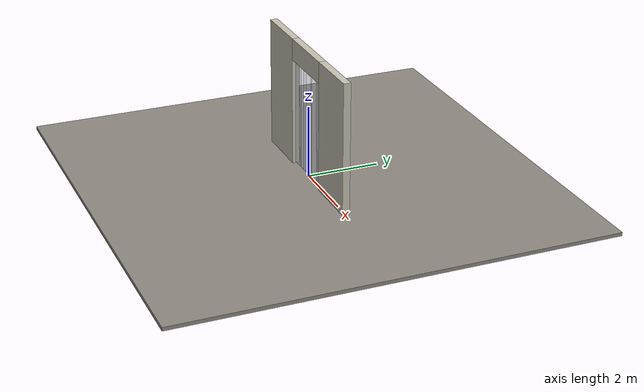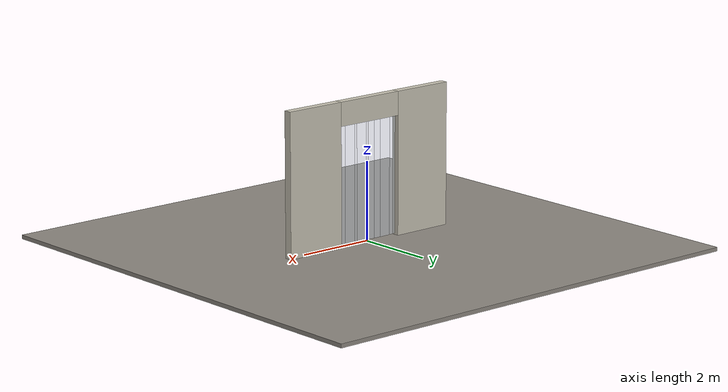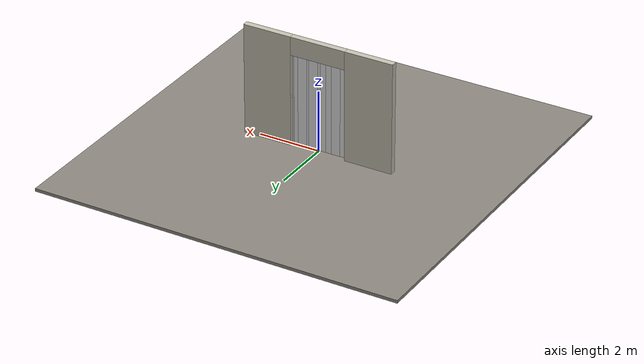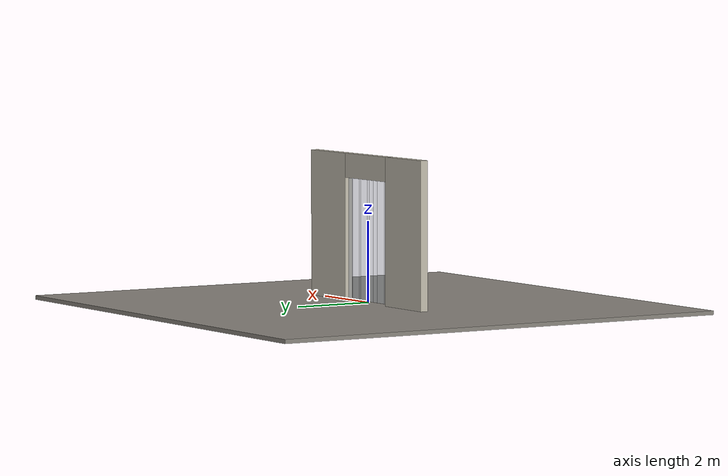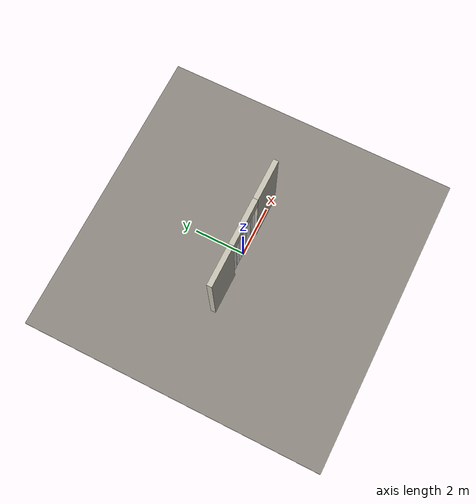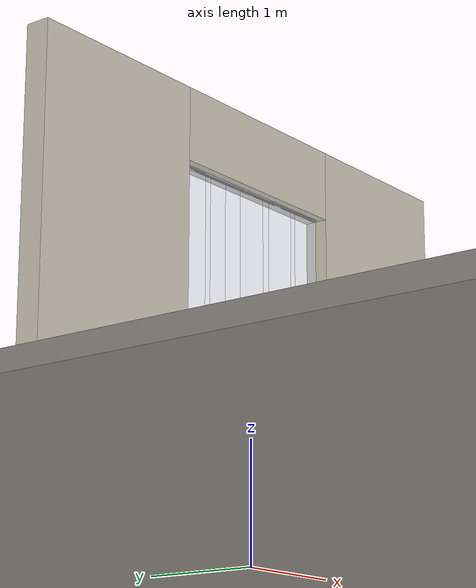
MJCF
<?xml version="1.0" ?>
<mujoco model="db0535_strip_curtain_simple">
  <compiler angle="radian" meshdir="../../hardware" texturedir="../../textures" autolimits="true" inertiafromgeom="false"/>
  <option timestep="0.002" integrator="implicitfast" cone="elliptic" impratio="10" noslip_iterations="3">
    <flag multiccd="enable"/>
  </option>
  <size memory="16M"/>
  <default>
    <geom condim="4" solref="0.005 1" solimp="0.95 0.99 0.001"/>
    <joint solreflimit="0.005 1" solimplimit="0.95 0.99 0.001"/>
    <tendon solreflimit="0.005 1"/>
    <equality solref="0.002 1"/>
  </default>
  <visual>
    <headlight ambient="0.4 0.4 0.4" diffuse="0.7 0.7 0.7" specular="0.2 0.2 0.2"/>
    <quality shadowsize="4096"/>
    <map znear="0.01" zfar="60"/>
  </visual>
  <asset>
    <material name="mat_floor" rgba="0.55 0.53 0.5 1" specular="0.2" shininess="0.15" reflectance="0"/>
    <material name="mat_wall" rgba="0.78 0.76 0.7 1" specular="0.2" shininess="0.1" reflectance="0"/>
    <material name="mat_frame" rgba="0.75 0.76 0.77 1" specular="0.8" shininess="0.65" reflectance="0.4"/>
    <material name="mat_strip" rgba="0.85 0.9 0.95 0.45" specular="0.2" shininess="0.7" reflectance="0.1"/>
    <texture name="skybox" type="skybox" builtin="gradient" rgb1="0.6 0.7 0.85" rgb2="0.9 0.92 0.95" width="256" height="256"/>
  </asset>
  <worldbody>
    <light name="sun" pos="1.5 -2.5 4" dir="-0.3 0.5 -0.8" directional="true" diffuse="0.8 0.8 0.8" specular="0.3 0.3 0.3" castshadow="true"/>
    <light name="fill" pos="-1.5 2.5 3" dir="0.3 -0.5 -0.7" directional="true" diffuse="0.35 0.35 0.4" castshadow="false"/>
    <camera name="robot_view" pos="0 -3.45625 2.47775" xyaxes="1 0 0 0 0.26963 0.962964" fovy="52"/>
    <camera name="far_view" pos="0 3.45625 2.47775" xyaxes="-1 0 0 0 -0.26963 0.962964" fovy="52"/>
    <camera name="iso" pos="2.62675 -2.90325 3.03075" xyaxes="0.741536 0.670913 0 -0.242917 0.268487 0.932151" fovy="46"/>
    <camera name="detail_handle" pos="0.48 -0.8 1.28" xyaxes="0.97561 0.219512 0 -0.070934 0.315262 0.94635" fovy="38"/>
    <geom name="floor" type="box" size="6 6 0.05" pos="0 0 -0.05" material="mat_floor" group="0" contype="1" conaffinity="1" friction="0.8 0.005 0.0001" density="2400"/>
    <geom name="wall_left" type="box" size="0.795 0.1 1.81" pos="-1.705 0 1.81" material="mat_wall" group="0" contype="1" conaffinity="1" friction="0.6 0.005 0.0001" density="800"/>
    <geom name="wall_right" type="box" size="0.795 0.1 1.81" pos="1.705 0 1.81" material="mat_wall" group="0" contype="1" conaffinity="1" friction="0.6 0.005 0.0001" density="800"/>
    <geom name="wall_header" type="box" size="0.91 0.1 0.3" pos="0 0 3.32" material="mat_wall" group="0" contype="1" conaffinity="1" friction="0.6 0.005 0.0001" density="800"/>
    <geom name="hanger_rail" type="box" size="0.96 0.03 0.03" pos="0 0 3.05" material="mat_frame" group="0" contype="1" conaffinity="1" friction="0.6 0.005 0.0001" density="7900"/>
    <geom name="strip_0_hanger" type="box" size="0.15 0.0055 0.0145" pos="-0.75 -0.0085 3.0275" material="mat_frame" group="1" contype="0" conaffinity="0" density="7900"/>
    <geom name="strip_1_hanger" type="box" size="0.15 0.0055 0.0145" pos="-0.5625 0.0035 3.0275" material="mat_frame" group="1" contype="0" conaffinity="0" density="7900"/>
    <geom name="strip_2_hanger" type="box" size="0.15 0.0055 0.0145" pos="-0.375 0.0015 3.0275" material="mat_frame" group="1" contype="0" conaffinity="0" density="7900"/>
    <geom name="strip_3_hanger" type="box" size="0.15 0.0055 0.0145" pos="-0.1875 -0.0015 3.0275" material="mat_frame" group="1" contype="0" conaffinity="0" density="7900"/>
    <geom name="strip_4_hanger" type="box" size="0.15 0.0055 0.0145" pos="0 -0.0035 3.0275" material="mat_frame" group="1" contype="0" conaffinity="0" density="7900"/>
    <geom name="strip_5_hanger" type="box" size="0.15 0.0055 0.0145" pos="0.1875 0.0085 3.0275" material="mat_frame" group="1" contype="0" conaffinity="0" density="7900"/>
    <geom name="strip_6_hanger" type="box" size="0.15 0.0055 0.0145" pos="0.375 -0.0085 3.0275" material="mat_frame" group="1" contype="0" conaffinity="0" density="7900"/>
    <geom name="strip_7_hanger" type="box" size="0.15 0.0055 0.0145" pos="0.5625 0.0035 3.0275" material="mat_frame" group="1" contype="0" conaffinity="0" density="7900"/>
    <geom name="strip_8_hanger" type="box" size="0.15 0.0055 0.0145" pos="0.75 0.0015 3.0275" material="mat_frame" group="1" contype="0" conaffinity="0" density="7900"/>
    <site name="approach_point" pos="0 -1.5 0" quat="1 0 0 0" size="0.05" rgba="0.2 0.9 0.2 0.5" group="4"/>
    <site name="goal_point" pos="0 1.5 0" quat="1 0 0 0" size="0.05" rgba="0.2 0.9 0.2 0.5" group="4"/>
    <site name="door_plane_center" pos="0 0 1.51" quat="1 0 0 0" size="0.02" rgba="0.2 0.9 0.2 0.5" group="4"/>
    <body name="strip_0" pos="-0.75 -0.0085 3.014">
      <inertial pos="0 0 -1.49" mass="2.357222" quat="-0.5 0.5 0.5 0.5" diaginertia="0.017680935 1.744424786 1.762102185"/>
      <joint name="strip_0_hinge" type="hinge" axis="1 0 0" limited="true" range="-1.48353 1.48353" damping="0.05" frictionloss="0.02" armature="0.005"/>
      <geom name="strip_0_geom" type="box" size="0.15 0.0015 1.49" pos="0 0 -1.49" material="mat_strip" group="0" contype="1" conaffinity="1" friction="0.6 0.005 0.0001" density="1250"/>
    </body>
    <body name="strip_1" pos="-0.5625 0.0035 3.014">
      <inertial pos="0 0 -1.49" mass="2.357222" quat="-0.5 0.5 0.5 0.5" diaginertia="0.017680935 1.744424786 1.762102185"/>
      <joint name="strip_1_hinge" type="hinge" axis="1 0 0" limited="true" range="-1.48353 1.48353" damping="0.05" frictionloss="0.02" armature="0.005"/>
      <geom name="strip_1_geom" type="box" size="0.15 0.0015 1.49" pos="0 0 -1.49" material="mat_strip" group="0" contype="1" conaffinity="1" friction="0.6 0.005 0.0001" density="1250"/>
    </body>
    <body name="strip_2" pos="-0.375 0.0015 3.014">
      <inertial pos="0 0 -1.49" mass="2.357222" quat="-0.5 0.5 0.5 0.5" diaginertia="0.017680935 1.744424786 1.762102185"/>
      <joint name="strip_2_hinge" type="hinge" axis="1 0 0" limited="true" range="-1.48353 1.48353" damping="0.05" frictionloss="0.02" armature="0.005"/>
      <geom name="strip_2_geom" type="box" size="0.15 0.0015 1.49" pos="0 0 -1.49" material="mat_strip" group="0" contype="1" conaffinity="1" friction="0.6 0.005 0.0001" density="1250"/>
    </body>
    <body name="strip_3" pos="-0.1875 -0.0015 3.014">
      <inertial pos="0 0 -1.49" mass="2.357222" quat="-0.5 0.5 0.5 0.5" diaginertia="0.017680935 1.744424786 1.762102185"/>
      <joint name="strip_3_hinge" type="hinge" axis="1 0 0" limited="true" range="-1.48353 1.48353" damping="0.05" frictionloss="0.02" armature="0.005"/>
      <geom name="strip_3_geom" type="box" size="0.15 0.0015 1.49" pos="0 0 -1.49" material="mat_strip" group="0" contype="1" conaffinity="1" friction="0.6 0.005 0.0001" density="1250"/>
    </body>
    <body name="strip_4" pos="0 -0.0035 3.014">
      <inertial pos="0 0 -1.49" mass="2.357222" quat="-0.5 0.5 0.5 0.5" diaginertia="0.017680935 1.744424786 1.762102185"/>
      <joint name="strip_4_hinge" type="hinge" axis="1 0 0" limited="true" range="-1.48353 1.48353" damping="0.05" frictionloss="0.02" armature="0.02"/>
      <geom name="strip_4_geom" type="box" size="0.15 0.0015 1.49" pos="0 0 -1.49" material="mat_strip" group="0" contype="1" conaffinity="1" friction="0.6 0.005 0.0001" density="1250"/>
    </body>
    <body name="strip_5" pos="0.1875 0.0085 3.014">
      <inertial pos="0 0 -1.49" mass="2.357222" quat="-0.5 0.5 0.5 0.5" diaginertia="0.017680935 1.744424786 1.762102185"/>
      <joint name="strip_5_hinge" type="hinge" axis="1 0 0" limited="true" range="-1.48353 1.48353" damping="0.05" frictionloss="0.02" armature="0.005"/>
      <geom name="strip_5_geom" type="box" size="0.15 0.0015 1.49" pos="0 0 -1.49" material="mat_strip" group="0" contype="1" conaffinity="1" friction="0.6 0.005 0.0001" density="1250"/>
    </body>
    <body name="strip_6" pos="0.375 -0.0085 3.014">
      <inertial pos="0 0 -1.49" mass="2.357222" quat="-0.5 0.5 0.5 0.5" diaginertia="0.017680935 1.744424786 1.762102185"/>
      <joint name="strip_6_hinge" type="hinge" axis="1 0 0" limited="true" range="-1.48353 1.48353" damping="0.05" frictionloss="0.02" armature="0.005"/>
      <geom name="strip_6_geom" type="box" size="0.15 0.0015 1.49" pos="0 0 -1.49" material="mat_strip" group="0" contype="1" conaffinity="1" friction="0.6 0.005 0.0001" density="1250"/>
    </body>
    <body name="strip_7" pos="0.5625 0.0035 3.014">
      <inertial pos="0 0 -1.49" mass="2.357222" quat="-0.5 0.5 0.5 0.5" diaginertia="0.017680935 1.744424786 1.762102185"/>
      <joint name="strip_7_hinge" type="hinge" axis="1 0 0" limited="true" range="-1.48353 1.48353" damping="0.05" frictionloss="0.02" armature="0.005"/>
      <geom name="strip_7_geom" type="box" size="0.15 0.0015 1.49" pos="0 0 -1.49" material="mat_strip" group="0" contype="1" conaffinity="1" friction="0.6 0.005 0.0001" density="1250"/>
    </body>
    <body name="strip_8" pos="0.75 0.0015 3.014">
      <inertial pos="0 0 -1.49" mass="2.357222" quat="-0.5 0.5 0.5 0.5" diaginertia="0.017680935 1.744424786 1.762102185"/>
      <joint name="strip_8_hinge" type="hinge" axis="1 0 0" limited="true" range="-1.48353 1.48353" damping="0.05" frictionloss="0.02" armature="0.005"/>
      <geom name="strip_8_geom" type="box" size="0.15 0.0015 1.49" pos="0 0 -1.49" material="mat_strip" group="0" contype="1" conaffinity="1" friction="0.6 0.005 0.0001" density="1250"/>
    </body>
  </worldbody>
  <contact>
    <exclude body1="strip_1" body2="strip_0"/>
    <exclude body1="strip_2" body2="strip_1"/>
    <exclude body1="strip_3" body2="strip_2"/>
    <exclude body1="strip_4" body2="strip_3"/>
    <exclude body1="strip_5" body2="strip_4"/>
    <exclude body1="strip_6" body2="strip_5"/>
    <exclude body1="strip_7" body2="strip_6"/>
    <exclude body1="strip_8" body2="strip_7"/>
  </contact>
  <sensor>
    <jointpos name="strip_0_hinge_pos" joint="strip_0_hinge"/>
    <jointvel name="strip_0_hinge_vel" joint="strip_0_hinge"/>
    <jointpos name="strip_1_hinge_pos" joint="strip_1_hinge"/>
    <jointvel name="strip_1_hinge_vel" joint="strip_1_hinge"/>
    <jointpos name="strip_2_hinge_pos" joint="strip_2_hinge"/>
    <jointvel name="strip_2_hinge_vel" joint="strip_2_hinge"/>
    <jointpos name="strip_3_hinge_pos" joint="strip_3_hinge"/>
    <jointvel name="strip_3_hinge_vel" joint="strip_3_hinge"/>
    <jointpos name="strip_4_hinge_pos" joint="strip_4_hinge"/>
    <jointvel name="strip_4_hinge_vel" joint="strip_4_hinge"/>
    <jointpos name="strip_5_hinge_pos" joint="strip_5_hinge"/>
    <jointvel name="strip_5_hinge_vel" joint="strip_5_hinge"/>
    <jointpos name="strip_6_hinge_pos" joint="strip_6_hinge"/>
    <jointvel name="strip_6_hinge_vel" joint="strip_6_hinge"/>
    <jointpos name="strip_7_hinge_pos" joint="strip_7_hinge"/>
    <jointvel name="strip_7_hinge_vel" joint="strip_7_hinge"/>
    <jointpos name="strip_8_hinge_pos" joint="strip_8_hinge"/>
    <jointvel name="strip_8_hinge_vel" joint="strip_8_hinge"/>
  </sensor>
</mujoco>
